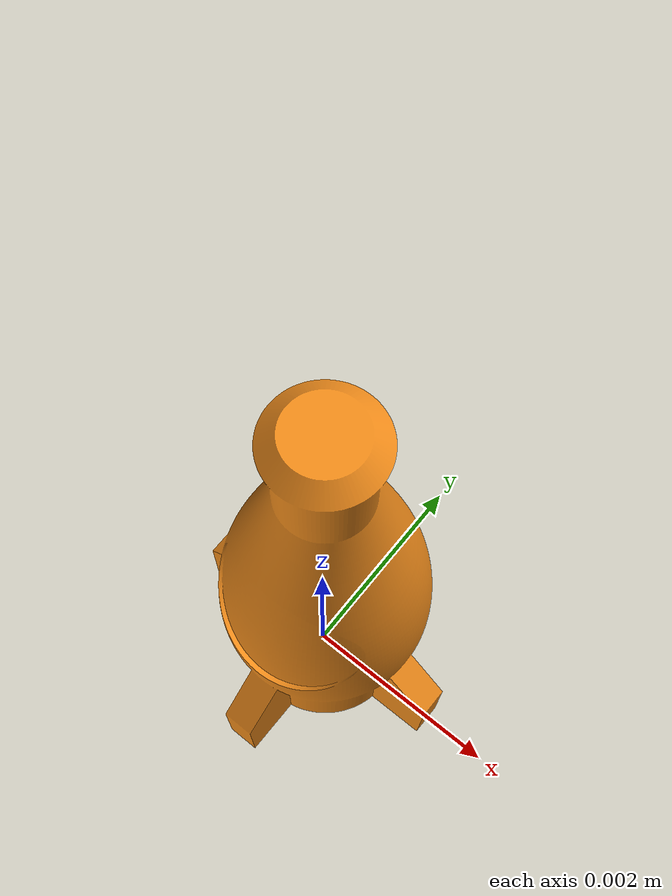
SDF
<?xml version="1.0" encoding="utf-8"?>
<sdf version="1.4">
<model name="Nuka-Cola">
    <static>0</static>
    <link name="link">
        <inertial>]
            <pose>0 0 0 0 0 0</pose>
            <mass>0.390</mass>
            <inertia>
            <ixx>0.00055575</ixx>
            <ixy>0</ixy>
            <ixz>0</ixz>
            <iyy>0.00055575</iyy>
            <iyz>0</iyz>
            <izz>0.0001755</izz>
            </inertia>
        </inertial>]
        <collision name="collision">
            <pose>0 0 0.15 0 0 0</pose>
            <geometry>
                <box><size>0.26 0.25 0.3</size></box>
            </geometry>
        </collision>
        <visual name="visual">
            <geometry>
            <mesh>
                <uri>model://nuka-cola/meshes/nuka-cola2.dae</uri>
                <scale>0.01 0.01 0.01</scale>
            </mesh>
            </geometry>
            <material>
                <script>
                    <uri>file://media/materials/scripts/gazebo.material</uri>
                    <name>Gazebo/Orange</name>
            </script>
        </material>
        </visual>
    </link>
  </model>
</sdf>
